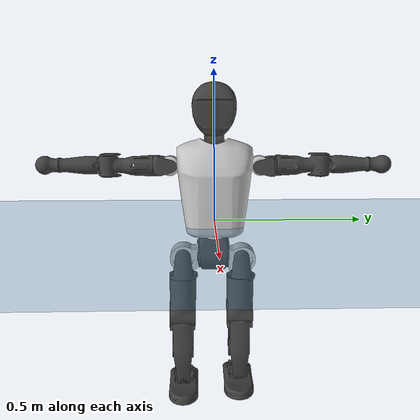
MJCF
<mujoco model="T1">
  <compiler angle="radian" assetdir="assets" balanceinertia="true" inertiafromgeom="false"/>

  <option timestep="0.005" density="1.2" viscosity="2e-05"/>

  <size nkey="1"/>

  <visual>
    <quality shadowsize="8192"/>
    <map shadowclip="0.5"/>
  </visual>

  <default>
    <default class="/">
      <joint armature="0.01" damping="0.01" frictionloss="0.1"/>
      <geom contype="0" conaffinity="0" group="1" solref="-1000 -80"/>
      <site size="0.01 0.005 0.005" group="5"/>
      <general forcelimited="true" biastype="affine" gainprm="25" biasprm="0 -25 -0.6"/>
      <default class="t1">
        <geom rgba="0.25 0.25 0.25 1"/>
        <default class="visual">
          <geom type="mesh" group="2"/>
        </default>
        <default class="collision">
          <geom group="3"/>
        </default>
        <default class="foot">
          <geom size="0.1115 0.05 0.015" type="box" condim="6" group="4" priority="1" solimp="0.015 1 0.015"/>
        </default>
        <default class="reward_collision_sphere">
          <geom group="5" rgba="1 0 0 1"/>
        </default>
      </default>
    </default>
  </default>

  <asset>
    <texture type="skybox" colorspace="auto" name="//unnamed_texture_0" builtin="gradient" rgb1="0.95 0.95 0.95" rgb2="0.95 0.95 0.95" width="100" height="600"/>
    <texture type="2d" colorspace="auto" name="texplane" builtin="checker" rgb1="0.345 0.575 0.748" rgb2="0.345 0.575 0.748" markrgb="1 1 1" width="512" height="512"/>
    <material name="MatPlane" class="/" texture="texplane" texuniform="true" texrepeat="2 2" specular="0.9"/>
    <mesh name="Trunk" class="/" file="Trunk.stl"/>
    <mesh name="H1" class="/" file="H1.stl"/>
    <mesh name="H2" class="/" file="H2.stl"/>
    <mesh name="AL1" class="/" file="AL1.stl"/>
    <mesh name="AL2" class="/" file="AL2.stl"/>
    <mesh name="AL3" class="/" file="AL3.stl"/>
    <mesh name="left_hand_link" class="/" file="left_hand_link.stl"/>
    <mesh name="AR1" class="/" file="AR1.stl"/>
    <mesh name="AR2" class="/" file="AR2.stl"/>
    <mesh name="AR3" class="/" file="AR3.stl"/>
    <mesh name="right_hand_link" class="/" file="right_hand_link.stl"/>
    <mesh name="Waist" class="/" file="Waist.stl"/>
    <mesh name="Hip_Pitch_Left" class="/" file="Hip_Pitch_Left.stl"/>
    <mesh name="Hip_Roll_Left" class="/" file="Hip_Roll_Left.stl"/>
    <mesh name="Hip_Yaw_Left" class="/" file="Hip_Yaw_Left.stl"/>
    <mesh name="Shank_Left" class="/" file="Shank_Left.stl"/>
    <mesh name="Ankle_Cross_Left" class="/" file="Ankle_Cross_Left.stl"/>
    <mesh name="left_foot_link" class="/" file="left_foot_link.stl"/>
    <mesh name="Hip_Pitch_Right" class="/" file="Hip_Pitch_Right.stl"/>
    <mesh name="Hip_Roll_Right" class="/" file="Hip_Roll_Right.stl"/>
    <mesh name="Hip_Yaw_Right" class="/" file="Hip_Yaw_Right.stl"/>
    <mesh name="Shank_Right" class="/" file="Shank_Right.stl"/>
    <mesh name="Ankle_Cross_Right" class="/" file="Ankle_Cross_Right.stl"/>
    <mesh name="right_foot_link" class="/" file="right_foot_link.stl"/>
  </asset>

  <worldbody>
    <geom name="floor" class="/" size="100 100 0.125" type="plane" group="0" material="MatPlane"/>
    <light name="toplight_shadow" class="/" pos="0 0 5" dir="0.0990148 0.0990148 -0.990148" type="directional" ambient="0.04 0.04 0.04" diffuse="0.55 0.55 0.55" specular="0.12 0.12 0.12"/>
    <light name="toplight_fill" class="/" pos="0 0 5" dir="0.0990148 0.0990148 -0.990148" type="directional" castshadow="false" ambient="0.04 0.04 0.04" diffuse="0.3 0.3 0.3" specular="0.08 0.08 0.08"/>
    <body name="trunk" childclass="t1" pos="-0.00276711 -0.000344953 0.00141978" quat="1 -9.05703e-06 1.67371e-05 7.23574e-06">
      <inertial pos="0.0434056 0.00175825 0.0950911" quat="0.999955 -0.000263819 -0.00934737 -0.00151717" mass="7.38011" diaginertia="0.0257854 0.0492544 0.0282529"/>
      <joint name="//unnamed_joint_0" type="free" armature="0" damping="0" frictionloss="0"/>
      <geom name="//unnamed_geom_1" class="visual" rgba="0.76 0.76 0.76 1" mesh="Trunk"/>
      <geom name="//unnamed_geom_2" class="collision" size="0.0643574 0.0858099 0.128715" pos="0.0464548 0 0.105358" type="box"/>
      <geom name="//unnamed_geom_3" class="reward_collision_sphere" size="0.0986814" pos="0.0464548 0 0.0877985"/>
      <geom name="//unnamed_geom_4" class="reward_collision_sphere" size="0.0128715" pos="0.0464548 0.0783756 0"/>
      <geom name="//unnamed_geom_5" class="reward_collision_sphere" size="0.0128715" pos="0.0464548 -0.0783756 0"/>
      <geom name="//unnamed_geom_6" class="reward_collision_sphere" size="0.0128715" pos="0.0464548 0.0986611 0.158037"/>
      <geom name="//unnamed_geom_7" class="reward_collision_sphere" size="0.0128715" pos="0.0464548 -0.0986611 0.158037"/>
      <site name="imu" pos="0.00709482 -0.0123071 0.0117867" size="0.00858099"/>
      <camera name="track" pos="0 -1.84413 0" quat="0.707107 0.707107 0 0" mode="trackcom"/>
      <camera name="ego_camera" pos="0.0944582 0 0.368754" quat="-0.5 -0.5 0.5 0.5"/>
      <body name="H1" pos="0.048123 -6.13851e-05 0.211533" quat="1 -2.05349e-05 -1.74656e-05 -4.06733e-05">
        <inertial pos="-0.0018507 0.00106234 0.0517692" quat="0.766829 -0.0205916 0.00669401 0.641486" mass="0.26654" diaginertia="6.57983e-05 0.000147783 7.62555e-05"/>
        <joint name="AAHead_yaw" pos="0 0 0" axis="-0.00598977 -0.00642256 0.999961" range="-1.62388 1.54973" armature="0.00809117" damping="0" frictionloss="0.0771186"/>
        <geom name="//unnamed_geom_8" class="visual" mesh="H1"/>
        <body name="H2" pos="-0.000963299 -0.000302851 0.0561428" quat="1 3.91487e-05 -0.000175478 -2.33447e-05">
          <inertial pos="0.0067964 0.00202327 0.0858732" quat="0.987066 0.105004 -0.0802475 -0.0907522" mass="0.394963" diaginertia="0.000544729 0.00132035 0.000888074"/>
          <joint name="Head_pitch" pos="0 0 0" axis="0.00590464 -0.999983 -0.000360327" range="-1.21712 0.352816" armature="0.00888828" damping="0.0139625" frictionloss="0.0755824"/>
          <geom name="//unnamed_geom_9" class="visual" mesh="H2"/>
          <geom name="//unnamed_geom_10" class="collision" size="0.0686479" pos="0.00774247 0 0.0965783"/>
          <geom name="//unnamed_geom_11" class="reward_collision_sphere" size="0.0772289" pos="0.0154849 0 0.0877985"/>
        </body>
      </body>
      <body name="AL1" pos="0.0455076 0.101602 0.189919" quat="1 -5.92391e-05 0.000534294 0.000221399">
        <inertial pos="-0.00340443 0.0410751 0.00129089" quat="0.5026 0.490554 -0.505894 0.50082" mass="0.331893" diaginertia="0.000380132 0.000900457 0.000155474"/>
        <joint name="Left_Shoulder_Pitch" pos="0 0 0" axis="0.00787429 0.99991 -0.0109025" stiffness="0.00550289" range="-3.32483 1.27618" armature="0.00912601" damping="0.00695303" frictionloss="0.080258"/>
        <geom name="//unnamed_geom_12" class="visual" rgba="0.76 0.76 0.76 1" mesh="AL1"/>
        <body name="AL2" pos="-0.000627739 0.0432635 -0.00265824" quat="1 -0.000111519 0.000547565 0.000133469">
          <inertial pos="0.00161902 0.0324665 0.000129316" quat="0.487933 0.509077 -0.487093 0.515269" mass="0.0968711" diaginertia="0.00010898 0.000228485 8.8018e-05"/>
          <joint name="Left_Shoulder_Roll" pos="0 0 0" axis="-0.999985 -0.00401599 0.00368903" range="-1.63001 1.78502" armature="0.00860287" damping="0.0102209" frictionloss="0.0834125"/>
          <geom name="//unnamed_geom_13" class="visual" mesh="AL2"/>
          <body name="AL3" pos="0.00103541 0.0555936 0.00281203" quat="1 -0.000206597 -0.000471521 -0.000445408">
            <inertial pos="0.000806785 0.0782905 -0.000444796" quat="0.705625 0.708553 0.00468588 -0.0049734" mass="0.653811" diaginertia="0.00367798 0.00852906 0.000321382"/>
            <joint name="Left_Elbow_Pitch" pos="0 0 0" axis="-0.000754353 -0.999999 0.000681866" range="-2.25549 2.26149" armature="0.00776391" damping="0.0163044" frictionloss="0.078939"/>
            <geom name="//unnamed_geom_14" class="visual" mesh="AL3"/>
            <geom name="//unnamed_geom_15" class="collision" size="0.025743 0.0643574" pos="0 0.0461033 0" quat="0.707105 0.707108 0 0" type="cylinder"/>
            <geom name="//unnamed_geom_16" class="reward_collision_sphere" size="0.0308916"/>
            <body name="left_hand_link" pos="-0.00208525 0.135811 0.00207778" quat="1 6.84316e-05 3.45164e-05 7.09829e-05">
              <inertial pos="0.000978559 0.0993132 0.00238168" quat="0.705283 0.708823 0.00501017 -0.0110131" mass="0.201115" diaginertia="0.00230146 0.00546131 0.000112424"/>
              <joint name="Left_Elbow_Yaw" pos="0 0 0" axis="0.00802621 0.00197737 0.999966" stiffness="0.00173612" range="-2.4686 -0.0536925" armature="0.00839332" damping="0.0153978" frictionloss="0.0893633"/>
              <geom name="//unnamed_geom_17" class="visual" mesh="left_hand_link"/>
              <geom name="//unnamed_geom_18" class="collision" size="0.025743 0.0750837" pos="0 0.119869 0" quat="0.707105 0.707108 0 0" type="cylinder"/>
              <geom name="//unnamed_geom_19" class="reward_collision_sphere" size="0.042905"/>
              <geom name="//unnamed_geom_20" class="reward_collision_sphere" size="0.0300335" pos="0 0.101427 0"/>
              <geom name="//unnamed_geom_21" class="reward_collision_sphere" size="0.0300335" pos="0 0.198244 0"/>
            </body>
          </body>
        </body>
      </body>
      <body name="AR1" pos="0.0466535 -0.0964455 0.190151" quat="1 1.35991e-05 -0.000615738 -0.000353144">
        <inertial pos="-0.0022421 -0.0419746 -0.000988968" quat="0.50565 0.499268 -0.500138 0.494885" mass="0.325748" diaginertia="0.000369656 0.000843857 0.000148451"/>
        <joint name="Right_Shoulder_Pitch" pos="0 0 0" axis="0.00183644 -0.999993 0.00320446" stiffness="0.00239054" range="-1.20316 3.31766" armature="0.00974129" damping="0.00893549" frictionloss="0.0906539"/>
        <geom name="//unnamed_geom_22" class="visual" rgba="0.76 0.76 0.76 1" mesh="AR1"/>
        <body name="AR2" pos="-0.000533842 -0.0451701 -0.000117104" quat="0.999999 -0.000329372 0.000883235 -0.000550212">
          <inertial pos="0.00061537 -0.0359698 -0.00194588" quat="0.513297 0.497272 -0.50322 0.485815" mass="0.100449" diaginertia="0.000107957 0.000225921 9.20012e-05"/>
          <joint name="Right_Shoulder_Roll" pos="0 0 0" axis="-0.999837 -0.0175732 0.0041622" range="-1.75882 1.58803" armature="0.00879121" damping="0.00890426" frictionloss="0.0814679"/>
          <geom name="//unnamed_geom_23" class="visual" mesh="AR2"/>
          <body name="AR3" pos="-0.000870092 -0.056197 -0.000364098" quat="1 -0.000351987 -0.000208274 4.6168e-05">
            <inertial pos="-0.00197941 -0.0790403 0.000186593" quat="0.707333 0.706875 -0.00105426 -0.00261735" mass="0.63162" diaginertia="0.00352945 0.00837426 0.000305995"/>
            <joint name="Right_Elbow_Pitch" pos="0 0 0" axis="0.000136145 1 0.000432189" range="-2.30781 2.28836" armature="0.00852955" damping="0.0127204" frictionloss="0.077187"/>
            <geom name="//unnamed_geom_24" class="visual" mesh="AR3"/>
            <geom name="//unnamed_geom_25" class="collision" size="0.025743 0.0643574" pos="0 -0.0461033 0" quat="0.707105 0.707108 0 0" type="cylinder"/>
            <geom name="//unnamed_geom_26" class="reward_collision_sphere" size="0.0308916"/>
            <body name="right_hand_link" pos="-0.00247306 -0.133939 0.00162781" quat="1 -6.73894e-06 -4.1243e-06 1.62767e-06">
              <inertial pos="-0.000321456 -0.0983006 -0.000739531" quat="0.707272 0.706928 -0.00296733 -0.00334957" mass="0.201179" diaginertia="0.00224505 0.005358 0.000106772"/>
              <joint name="Right_Elbow_Yaw" pos="0 0 0" axis="-0.0014066 0.00760111 0.99997" range="-0.0514648 2.43198" armature="0.00732196" damping="0.0115068" frictionloss="0.0962588"/>
              <geom name="//unnamed_geom_27" class="visual" mesh="right_hand_link"/>
              <geom name="//unnamed_geom_28" class="collision" size="0.025743 0.0750837" pos="0 -0.119869 0" quat="0.707105 0.707108 0 0" type="cylinder"/>
              <geom name="//unnamed_geom_29" class="reward_collision_sphere" size="0.042905"/>
              <geom name="//unnamed_geom_30" class="reward_collision_sphere" size="0.0300335" pos="0 -0.101427 0"/>
              <geom name="//unnamed_geom_31" class="reward_collision_sphere" size="0.0300335" pos="0 -0.198244 0"/>
            </body>
          </body>
        </body>
      </body>
      <body name="Waist" pos="0.0505838 -0.00403348 -0.0991223" quat="1 0.000209769 -0.000243168 0.000287534">
        <inertial pos="0.00230551 0.00112872 0.00473602" quat="0.984464 -3.05209e-05 -0.175587 0.000340549" mass="1.58335" diaginertia="0.00143196 0.00331122 0.00233107"/>
        <joint name="Waist" pos="0 0 0" axis="-0.00811888 0.00682791 0.999944" stiffness="0.00663658" range="-1.56985 1.61484" armature="0.00854045" damping="0.00871237" frictionloss="0.0831553"/>
        <geom name="//unnamed_geom_32" class="visual" mesh="Waist"/>
        <body name="Hip_Pitch_Left" pos="0.00115277 0.0960998 -0.000284958" quat="0.999999 0.000724732 0.000852986 -0.000723431">
          <inertial pos="0.000168373 -0.00768992 -0.0155849" quat="0.975141 0.221097 0.0145812 0.00173611" mass="0.664298" diaginertia="0.000517784 0.00101509 0.000651877"/>
          <joint name="Left_Hip_Pitch" pos="0 0 0" axis="0.00080786 0.999992 0.00397397" stiffness="0.00159663" range="-1.74845 1.53408" armature="0.00962526" damping="0.014834" frictionloss="0.0831266"/>
          <geom name="//unnamed_geom_33" class="visual" rgba="0.76 0.76 0.76 1" mesh="Hip_Pitch_Left"/>
          <body name="Hip_Roll_Left" pos="0.00315959 -0.00323109 -0.0125513" quat="1 -0.000247612 5.96004e-05 -7.1101e-05">
            <inertial pos="0.00147983 0.00147029 -0.0500115" quat="0.707145 -0.00542933 -0.00503677 0.70703" mass="0.239299" diaginertia="0.000475037 0.00100559 0.000257321"/>
            <joint name="Left_Hip_Roll" pos="0 0 0" axis="-0.999919 0.00793614 0.00996809" range="-1.60318 0.251893" armature="0.00950042" damping="0.0191627" frictionloss="0.0910616"/>
            <geom name="//unnamed_geom_34" class="visual" mesh="Hip_Roll_Left"/>
            <geom name="//unnamed_geom_35" class="reward_collision_sphere" size="0.0471955"/>
            <body name="Hip_Yaw_Left" pos="0.00607958 -0.00324235 -0.0686954" quat="0.999999 1.62098e-05 0.000834396 -0.000781532">
              <inertial pos="-0.00374264 0.00152157 -0.0800222" quat="0.695052 -0.0392658 -0.0436707 0.716557" mass="1.38505" diaginertia="0.00698409 0.0171297 0.00136106"/>
              <joint name="Left_Hip_Yaw" pos="0 0 0" axis="-0.00200339 0.00413133 -0.999989" range="-0.974734 0.988071" armature="0.00863428" damping="0.0127611" frictionloss="0.0841204"/>
              <geom name="//unnamed_geom_36" class="visual" mesh="Hip_Yaw_Left"/>
              <geom name="//unnamed_geom_37" class="collision" size="0.042905 0.0686479" type="cylinder"/>
              <body name="Shank_Left" pos="-0.00450072 -0.0013072 -0.110607" quat="1 0.00034862 0.000335332 -0.000147938">
                <inertial pos="-0.00574817 -0.0010972 -0.109206" quat="0.998124 -0.00148253 -0.0276482 0.0546128" mass="1.13313" diaginertia="0.0101197 0.0239774 0.00098068"/>
                <joint name="Left_Knee_Pitch" pos="0 0 0" axis="-0.0063326 0.999939 -0.00902314" range="0.00209116 2.29834" armature="0.00943408" damping="0" frictionloss="0.0883351"/>
                <geom name="//unnamed_geom_38" class="visual" mesh="Shank_Left"/>
                <geom name="//unnamed_geom_39" class="collision" size="0.042905 0.0643574" pos="0 0 -0.105358" type="cylinder"/>
                <geom name="//unnamed_geom_40" class="reward_collision_sphere" size="0.0557765"/>
                <body name="Ankle_Cross_Left" pos="-0.000181812 -0.00153159 -0.248671" quat="0.999999 -0.00122996 6.08556e-05 5.51229e-05">
                  <inertial pos="-0.000753463 0.00199082 -0.00460737" quat="0.441026 0.554024 0.549044 0.443965" mass="0.0462382" diaginertia="7.77505e-06 1.69803e-05 6.07824e-06"/>
                  <joint name="Left_Ankle_Pitch" pos="0 0 0" axis="0.00108612 0.999999 -2.39928e-06" range="-0.870118 0.340551" armature="0.00793604" damping="0.00945296" frictionloss="0.083208"/>
                  <geom name="//unnamed_geom_41" class="visual" mesh="Ankle_Cross_Left"/>
                  <body name="left_foot_link" pos="-0.00297237 -0.00190081 -0.00919646" quat="0.999999 -0.00100614 0.00027938 -6.07124e-05">
                    <inertial pos="-0.00147792 -0.00222637 -0.00909551" quat="0.000931166 0.620815 -0.000978839 0.783956" mass="0.420873" diaginertia="0.000714231 0.00156117 0.00115826"/>
                    <joint name="Left_Ankle_Roll" pos="0 0 0" axis="-0.999961 0.00852829 -0.00246437" range="-0.394258 0.479934" armature="0.00840024" damping="0.00204643" frictionloss="0.07657"/>
                    <geom name="//unnamed_geom_42" class="visual" mesh="left_foot_link"/>
                    <geom name="left_foot" class="foot" size="0.105126 0.0441421 0.0123186" pos="0.00774247 0 -0.0131698"/>
                    <geom name="//unnamed_geom_44" class="reward_collision_sphere" size="0.0446212" pos="0.00774247 0 -0.0131698"/>
                    <geom name="//unnamed_geom_45" class="reward_collision_sphere" size="0.025743" pos="0.0735535 -0.0212075 -0.0131698"/>
                    <geom name="//unnamed_geom_46" class="reward_collision_sphere" size="0.025743" pos="-0.0541973 -0.0212075 -0.0131698"/>
                    <site name="left_foot" class="foot" pos="0.00774247 0 -0.0131698" size="0.00858099"/>
                  </body>
                </body>
              </body>
            </body>
          </body>
        </body>
        <body name="Hip_Pitch_Right" pos="-0.00478444 -0.100259 0.00267228" quat="1 -2.1123e-05 5.291e-05 -0.000128808">
          <inertial pos="0.0012181 0.00690026 -0.0180565" quat="0.973148 -0.228679 0.0262242 6.56703e-05" mass="0.647785" diaginertia="0.000509251 0.000995431 0.000663536"/>
          <joint name="Right_Hip_Pitch" pos="0 0 0" axis="-0.00654703 -0.999969 -0.00433626" range="-1.61372 1.75673" armature="0.00740365" damping="0.0118329" frictionloss="0.097716"/>
          <geom name="//unnamed_geom_47" class="visual" rgba="0.76 0.76 0.76 1" mesh="Hip_Pitch_Right"/>
          <body name="Hip_Roll_Right" pos="-0.0023853 -0.00100103 -0.0150414" quat="0.999999 -1.4087e-05 0.00105684 0.000470787">
            <inertial pos="-0.000699764 0.00236917 -0.04536" quat="0.706471 -0.00415837 -0.00668369 0.707698" mass="0.248311" diaginertia="0.000472857 0.000966104 0.000267608"/>
            <joint name="Right_Hip_Roll" pos="0 0 0" axis="-0.999993 0.00320869 -0.00175278" stiffness="4.81147e-05" range="-0.227119 1.56134" armature="0.00888111" damping="0.0192119" frictionloss="0.0934019"/>
            <geom name="//unnamed_geom_48" class="visual" mesh="Hip_Roll_Right"/>
            <geom name="//unnamed_geom_49" class="reward_collision_sphere" size="0.0471955"/>
            <body name="Hip_Yaw_Right" pos="0.00171643 -0.00238091 -0.0762627" quat="1 -0.00018328 -0.000271919 0.000233566">
              <inertial pos="-0.00582226 -0.002098 -0.0762261" quat="0.715577 -0.0324214 -0.037954 0.696748" mass="1.37732" diaginertia="0.00703004 0.016341 0.00132066"/>
              <joint name="Right_Hip_Yaw" pos="0 0 0" axis="0.00464899 0.000129123 -0.999989" range="-0.97907 1.02925" armature="0.00912719" damping="0" frictionloss="0.0742017"/>
              <geom name="//unnamed_geom_50" class="visual" mesh="Hip_Yaw_Right"/>
              <geom name="//unnamed_geom_51" class="collision" size="0.042905 0.0686479" type="cylinder"/>
              <body name="Shank_Right" pos="-0.0109343 -0.00250221 -0.118907" quat="0.999999 0.0012914 0.000375292 -3.95876e-05">
                <inertial pos="-0.00570276 -0.000770385 -0.107391" quat="0.999063 -0.00178646 -0.0303366 -0.0308255" mass="1.14665" diaginertia="0.0095415 0.0234994 0.00103615"/>
                <joint name="Right_Knee_Pitch" pos="0 0 0" axis="0.00177819 -0.999995 -0.00278943" range="-2.33407 -0.0170901" armature="0.00757125" damping="0.010987" frictionloss="0.0815242"/>
                <geom name="//unnamed_geom_52" class="visual" mesh="Shank_Right"/>
                <geom name="//unnamed_geom_53" class="collision" size="0.042905 0.0643574" pos="0 0 -0.105358" type="cylinder"/>
                <geom name="//unnamed_geom_54" class="reward_collision_sphere" size="0.0557765"/>
                <body name="Ankle_Cross_Right" pos="0.000254746 0.00150432 -0.249783" quat="1 -1.44609e-05 -4.46264e-05 8.13569e-05">
                  <inertial pos="-0.00141629 0.00292967 -0.00696117" quat="0.443565 0.551704 0.549865 0.443308" mass="0.0444277" diaginertia="7.97409e-06 1.6504e-05 5.84884e-06"/>
                  <joint name="Right_Ankle_Pitch" pos="0 0 0" axis="0.00052138 -1 4.35966e-05" range="-0.307677 0.842898" armature="0.00875302" damping="0.0200339" frictionloss="0.0846193"/>
                  <geom name="//unnamed_geom_55" class="visual" mesh="Ankle_Cross_Right"/>
                  <body name="right_foot_link" pos="0.000621884 -0.00010166 -0.0187165" quat="1 9.5861e-05 -0.000264416 -5.53932e-05">
                    <inertial pos="1.98998e-05 0.000480952 -0.00633971" quat="0.000103693 0.621926 0.00145931 0.783074" mass="0.429283" diaginertia="0.000775818 0.001627 0.00118823"/>
                    <joint name="Right_Ankle_Roll" pos="0 0 0" axis="-0.999938 -0.00299408 0.0107168" stiffness="0.00239776" range="-0.457623 0.42584" armature="0.00966977" damping="0.0174463" frictionloss="0.0927782"/>
                    <geom name="//unnamed_geom_56" class="visual" mesh="right_foot_link"/>
                    <geom name="right_foot" class="foot" size="0.0981337 0.0417464 0.0130334" pos="0.00774247 0 -0.0131698"/>
                    <geom name="//unnamed_geom_58" class="reward_collision_sphere" size="0.034324"/>
                    <geom name="//unnamed_geom_59" class="reward_collision_sphere" size="0.025743" pos="0.00774247 0 -0.0131698"/>
                    <geom name="//unnamed_geom_60" class="reward_collision_sphere" size="0.025743" pos="0.0735535 0.0212075 -0.0131698"/>
                    <geom name="//unnamed_geom_61" class="reward_collision_sphere" size="0.025743" pos="-0.0541973 0.0212075 -0.0131698"/>
                    <site name="right_foot" class="foot" pos="0.00774247 0 -0.0131698" size="0.00858099"/>
                  </body>
                </body>
              </body>
            </body>
          </body>
        </body>
      </body>
    </body>
  </worldbody>

  <contact>
    <pair class="/" geom1="floor" geom2="left_foot" name="//unnamed_contact_0"/>
    <pair class="/" geom1="floor" geom2="right_foot" name="//unnamed_contact_1"/>
  </contact>

  <actuator>
    <general name="AAHead_yaw" class="/" joint="AAHead_yaw" forcerange="-6.09006 6.09006" gainprm="19.9215" biasprm="0 -19.9215 -0.541485"/>
    <general name="Head_pitch" class="/" joint="Head_pitch" forcerange="-5.79712 5.79712" gainprm="19.9215" biasprm="0 -19.9215 -0.541485"/>
    <general name="Left_Shoulder_Pitch" class="/" joint="Left_Shoulder_Pitch" forcerange="-16.5556 16.5556" gainprm="19.9215" biasprm="0 -19.9215 -0.541485"/>
    <general name="Left_Shoulder_Roll" class="/" joint="Left_Shoulder_Roll" forcerange="-15.3538 15.3538" gainprm="19.9215" biasprm="0 -19.9215 -0.541485"/>
    <general name="Left_Elbow_Pitch" class="/" joint="Left_Elbow_Pitch" forcerange="-16.611 16.611" gainprm="19.9215" biasprm="0 -19.9215 -0.541485"/>
    <general name="Left_Elbow_Yaw" class="/" joint="Left_Elbow_Yaw" forcerange="-15.9702 15.9702" gainprm="19.9215" biasprm="0 -19.9215 -0.541485"/>
    <general name="Right_Shoulder_Pitch" class="/" joint="Right_Shoulder_Pitch" forcerange="-14.5797 14.5797" gainprm="19.9215" biasprm="0 -19.9215 -0.541485"/>
    <general name="Right_Shoulder_Roll" class="/" joint="Right_Shoulder_Roll" forcerange="-16.3665 16.3665" gainprm="19.9215" biasprm="0 -19.9215 -0.541485"/>
    <general name="Right_Elbow_Pitch" class="/" joint="Right_Elbow_Pitch" forcerange="-16.4724 16.4724" gainprm="19.9215" biasprm="0 -19.9215 -0.541485"/>
    <general name="Right_Elbow_Yaw" class="/" joint="Right_Elbow_Yaw" forcerange="-13.9298 13.9298" gainprm="19.9215" biasprm="0 -19.9215 -0.541485"/>
    <general name="Waist" class="/" joint="Waist" forcerange="-25.1104 25.1104" gainprm="19.9215" biasprm="0 -19.9215 -0.541485"/>
    <general name="Left_Hip_Pitch" class="/" joint="Left_Hip_Pitch" forcerange="-39.5273 39.5273" gainprm="19.9215" biasprm="0 -19.9215 -0.541485"/>
    <general name="Left_Hip_Roll" class="/" joint="Left_Hip_Roll" forcerange="-28.4266 28.4266" gainprm="19.9215" biasprm="0 -19.9215 -0.541485"/>
    <general name="Left_Hip_Yaw" class="/" joint="Left_Hip_Yaw" forcerange="-23.4666 23.4666" gainprm="19.9215" biasprm="0 -19.9215 -0.541485"/>
    <general name="Left_Knee_Pitch" class="/" joint="Left_Knee_Pitch" forcerange="-53.1877 53.1877" gainprm="19.9215" biasprm="0 -19.9215 -0.541485"/>
    <general name="Left_Ankle_Pitch" class="/" joint="Left_Ankle_Pitch" forcerange="-17.0467 17.0467" gainprm="19.9215" biasprm="0 -19.9215 -0.541485"/>
    <general name="Left_Ankle_Roll" class="/" joint="Left_Ankle_Roll" forcerange="-14.1544 14.1544" gainprm="19.9215" biasprm="0 -19.9215 -0.541485"/>
    <general name="Right_Hip_Pitch" class="/" joint="Right_Hip_Pitch" forcerange="-38.6534 38.6534" gainprm="19.9215" biasprm="0 -19.9215 -0.541485"/>
    <general name="Right_Hip_Roll" class="/" joint="Right_Hip_Roll" forcerange="-24.1472 24.1472" gainprm="19.9215" biasprm="0 -19.9215 -0.541485"/>
    <general name="Right_Hip_Yaw" class="/" joint="Right_Hip_Yaw" forcerange="-26.3095 26.3095" gainprm="19.9215" biasprm="0 -19.9215 -0.541485"/>
    <general name="Right_Knee_Pitch" class="/" joint="Right_Knee_Pitch" forcerange="-56.2342 56.2342" gainprm="19.9215" biasprm="0 -19.9215 -0.541485"/>
    <general name="Right_Ankle_Pitch" class="/" joint="Right_Ankle_Pitch" forcerange="-18.0912 18.0912" gainprm="19.9215" biasprm="0 -19.9215 -0.541485"/>
    <general name="Right_Ankle_Roll" class="/" joint="Right_Ankle_Roll" forcerange="-13.3288 13.3288" gainprm="19.9215" biasprm="0 -19.9215 -0.541485"/>
  </actuator>

  <sensor>
    <gyro site="imu" name="imu_angular_velocity"/>
    <velocimeter site="imu" name="imu_linear_velocity"/>
    <framelinvel objtype="site" objname="left_foot" name="left_foot_global_linear_velocity"/>
    <framelinvel objtype="site" objname="right_foot" name="right_foot_global_linear_velocity"/>
  </sensor>

  <keyframe>
    <key name="home" qpos="0 0 0.6385 1 0 0 0 0 0 0 1.4 0 -0.4 0 -1.4 0 0.4 0 -0.4 0 0 0.8 -0.4 0 0.4 0 0 -0.8 0.4 0"/>
  </keyframe>
</mujoco>
